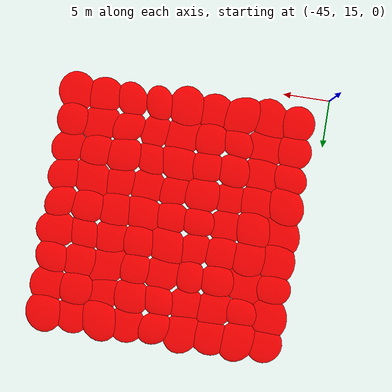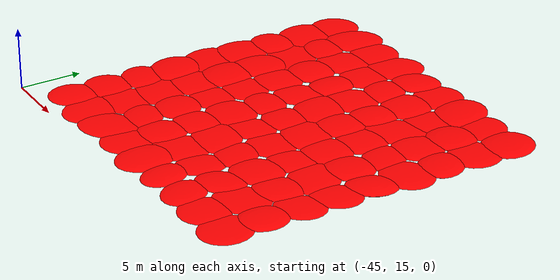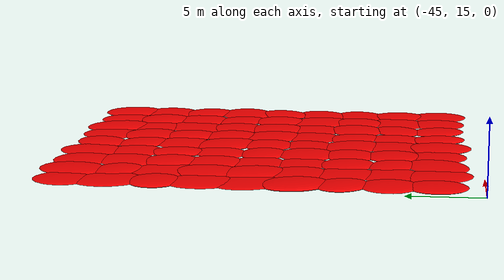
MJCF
<mujoco model="random_box_terrain">
    <compiler angle="degree" coordinate="local"/>
    <option timestep="0.01" gravity="0 0 -9.81" integrator="RK4"/>

    <asset>
        <texture type="2d" name="Plastic006_color"      file="../../textures/Plastic006_2K-PNG/Plastic006_2K-PNG_Color.png"/>
        <texture type="2d" name="Plastic006_roughness"  file="../../textures/Plastic006_2K-PNG/Plastic006_2K-PNG_Roughness.png"/>
        <texture type="2d" name="Plastic006_normal"     file="../../textures/Plastic006_2K-PNG/Plastic006_2K-PNG_NormalDX.png"/>

        <material name="pbr_plastic_black" metallic ="0.05" roughness="1.0" rgba="1 0 0 1.0">
        <layer role="rgb"        texture="Plastic006_color"/>
        <layer role="normal"     texture="Plastic006_normal"/>
        <layer role="roughness"  texture="Plastic006_roughness"/>
        </material>

        <texture type="2d" name="Plastic013A_color"      file="../../textures/Plastic013A_2K-PNG/Plastic013A_2K-PNG_Color.png"/>
        <texture type="2d" name="Plastic013A_roughness"  file="../../textures/Plastic013A_2K-PNG/Plastic013A_2K-PNG_Roughness.png"/>
        <texture type="2d" name="Plastic013A_normal"     file="../../textures/Plastic013A_2K-PNG/Plastic013A_2K-PNG_NormalDX.png"/>

        <material name="pbr_plastic_white" metallic ="0.05" roughness="1.0" rgba="1 0 0 1.0">
        <layer role="rgb"        texture="Plastic013A_color"/>
        <layer role="normal"     texture="Plastic013A_normal"/>
        <layer role="roughness"  texture="Plastic013A_roughness"/>
        </material>

        <texture type="2d" name="Plastic010_color"      file="../../textures/Plastic010_2K-PNG/Plastic010_2K-PNG_Color.png"/>
        <texture type="2d" name="Plastic010_roughness"  file="../../textures/Plastic010_2K-PNG/Plastic010_2K-PNG_Roughness.png"/>
        <texture type="2d" name="Plastic010_normal"     file="../../textures/Plastic010_2K-PNG/Plastic010_2K-PNG_NormalDX.png"/>

        <material name="pbr_plastic_gray" metallic ="0.05" roughness="1.0" rgba="1 0 0 1.0">
        <layer role="rgb"        texture="Plastic010_color"/>
        <layer role="normal"     texture="Plastic010_normal"/>
        <layer role="roughness"  texture="Plastic010_roughness"/>
        </material>
    </asset>
    <worldbody>
        <body name="offset" pos="-30.0 30.0 0.0">
            <body name="terrain" pos="0.0 0.0 0.0">
                <geom type="ellipsoid" pos="-12.0 -12.0 -0.1" size="2.0 1.894 0.153" euler="0 0 84.9" material="pbr_plastic_gray"/>
                <geom type="ellipsoid" pos="-9.0 -12.0 -0.1" size="2.0 2.395 0.115" euler="0 0 21.4" material="pbr_plastic_white"/>
                <geom type="ellipsoid" pos="-6.0 -12.0 -0.1" size="2.0 2.484 0.146" euler="0 0 118.3" material="pbr_plastic_gray"/>
                <geom type="ellipsoid" pos="-3.0 -12.0 -0.1" size="2.0 2.017 0.119" euler="0 0 135.9" material="pbr_plastic_white"/>
                <geom type="ellipsoid" pos="0.0 -12.0 -0.1" size="2.0 2.397 0.171" euler="0 0 189.4" material="pbr_plastic_gray"/>
                <geom type="ellipsoid" pos="3.0 -12.0 -0.1" size="2.0 1.512 0.172" euler="0 0 288.3" material="pbr_plastic_white"/>
                <geom type="ellipsoid" pos="6.0 -12.0 -0.1" size="2.0 1.627 0.151" euler="0 0 301.4" material="pbr_plastic_gray"/>
                <geom type="ellipsoid" pos="9.0 -12.0 -0.1" size="2.0 2.006 0.113" euler="0 0 332.9" material="pbr_plastic_white"/>
                <geom type="ellipsoid" pos="12.0 -12.0 -0.1" size="2.0 2.176 0.104" euler="0 0 197.4" material="pbr_plastic_gray"/>

                <geom type="ellipsoid" pos="-12.0 -9.0 -0.1" size="2.0 1.928 0.145" euler="0 0 171.7" material="pbr_plastic_white"/>
                <geom type="ellipsoid" pos="-9.0 -9.0 -0.1" size="2.0 2.239 0.104" euler="0 0 70.4" material="pbr_plastic_gray"/>
                <geom type="ellipsoid" pos="-6.0 -9.0 -0.1" size="2.0 1.529 0.154" euler="0 0 335.2" material="pbr_plastic_white"/>
                <geom type="ellipsoid" pos="-3.0 -9.0 -0.1" size="2.0 1.896 0.173" euler="0 0 270.9" material="pbr_plastic_gray"/>
                <geom type="ellipsoid" pos="0.0 -9.0 -0.1" size="2.0 2.387 0.119" euler="0 0 339.4" material="pbr_plastic_white"/>
                <geom type="ellipsoid" pos="3.0 -9.0 -0.1" size="2.0 1.591 0.119" euler="0 0 255.8" material="pbr_plastic_gray"/>
                <geom type="ellipsoid" pos="6.0 -9.0 -0.1" size="2.0 1.612 0.169" euler="0 0 39.7" material="pbr_plastic_white"/>
                <geom type="ellipsoid" pos="9.0 -9.0 -0.1" size="2.0 2.247 0.11" euler="0 0 129.0" material="pbr_plastic_gray"/>
                <geom type="ellipsoid" pos="12.0 -9.0 -0.1" size="2.0 1.758 0.167" euler="0 0 270.6" material="pbr_plastic_white"/>

                <geom type="ellipsoid" pos="-12.0 -6.0 -0.1" size="2.0 1.681 0.163" euler="0 0 155.9" material="pbr_plastic_white"/>
                <geom type="ellipsoid" pos="-9.0 -6.0 -0.1" size="2.0 2.294 0.116" euler="0 0 202.7" material="pbr_plastic_gray"/>
                <geom type="ellipsoid" pos="-6.0 -6.0 -0.1" size="2.0 1.831 0.175" euler="0 0 147.6" material="pbr_plastic_white"/>
                <geom type="ellipsoid" pos="-3.0 -6.0 -0.1" size="2.0 1.808 0.173" euler="0 0 190.5" material="pbr_plastic_gray"/>
                <geom type="ellipsoid" pos="0.0 -6.0 -0.1" size="2.0 2.384 0.153" euler="0 0 57.4" material="pbr_plastic_white"/>
                <geom type="ellipsoid" pos="3.0 -6.0 -0.1" size="2.0 1.647 0.138" euler="0 0 122.6" material="pbr_plastic_gray"/>
                <geom type="ellipsoid" pos="6.0 -6.0 -0.1" size="2.0 2.136 0.184" euler="0 0 123.9" material="pbr_plastic_white"/>
                <geom type="ellipsoid" pos="9.0 -6.0 -0.1" size="2.0 1.841 0.167" euler="0 0 53.2" material="pbr_plastic_gray"/>
                <geom type="ellipsoid" pos="12.0 -6.0 -0.1" size="2.0 1.751 0.112" euler="0 0 220.3" material="pbr_plastic_white"/>

                <geom type="ellipsoid" pos="-12.0 -3.0 -0.1" size="2.0 2.356 0.197" euler="0 0 28.2" material="pbr_plastic_white"/>
                <geom type="ellipsoid" pos="-9.0 -3.0 -0.1" size="2.0 2.193 0.142" euler="0 0 251.2" material="pbr_plastic_gray"/>
                <geom type="ellipsoid" pos="-6.0 -3.0 -0.1" size="2.0 1.721 0.108" euler="0 0 177.7" material="pbr_plastic_white"/>
                <geom type="ellipsoid" pos="-3.0 -3.0 -0.1" size="2.0 2.193 0.164" euler="0 0 84.8" material="pbr_plastic_gray"/>
                <geom type="ellipsoid" pos="0.0 -3.0 -0.1" size="2.0 1.689 0.119" euler="0 0 39.4" material="pbr_plastic_white"/>
                <geom type="ellipsoid" pos="3.0 -3.0 -0.1" size="2.0 1.96 0.109" euler="0 0 228.0" material="pbr_plastic_gray"/>
                <geom type="ellipsoid" pos="6.0 -3.0 -0.1" size="2.0 1.742 0.127" euler="0 0 239.7" material="pbr_plastic_white"/>
                <geom type="ellipsoid" pos="9.0 -3.0 -0.1" size="2.0 2.437 0.132" euler="0 0 37.9" material="pbr_plastic_gray"/>
                <geom type="ellipsoid" pos="12.0 -3.0 -0.1" size="2.0 1.733 0.126" euler="0 0 231.2" material="pbr_plastic_white"/>

                <geom type="ellipsoid" pos="-12.0 0.0 -0.1" size="2.0 2.495 0.107" euler="0 0 24.7"  material="pbr_plastic_white"/>
                <geom type="ellipsoid" pos="-9.0 0.0 -0.1" size="2.0 2.394 0.198" euler="0 0 19.4"  material="pbr_plastic_gray"/>
                <geom type="ellipsoid" pos="-6.0 0.0 -0.1" size="2.0 1.846 0.109" euler="0 0 353.3"  material="pbr_plastic_white"/>
                <geom type="ellipsoid" pos="-3.0 0.0 -0.1" size="2.0 1.604 0.181" euler="0 0 353.1"  material="pbr_plastic_gray"/>
                <geom type="ellipsoid" pos="0.0 0.0 -0.1" size="2.0 1.8 0.171"  euler="0 0 4.3" material="pbr_plastic_white"/>
                <geom type="ellipsoid" pos="3.0 0.0 -0.1" size="2.0 2.335 0.168"  euler="0 0 240.2" material="pbr_plastic_gray"/>
                <geom type="ellipsoid" pos="6.0 0.0 -0.1" size="2.0 2.121 0.173"  euler="0 0 17.4" material="pbr_plastic_white"/>
                <geom type="ellipsoid" pos="9.0 0.0 -0.1" size="2.0 1.913 0.194"  euler="0 0 227.4" material="pbr_plastic_gray"/>
                <geom type="ellipsoid" pos="12.0 0.0 -0.1" size="2.0 1.589 0.189"  euler="0 0 56.3" material="pbr_plastic_white"/>

                <geom type="ellipsoid" pos="-12.0 3.0 -0.1" size="2.0 2.46 0.133" euler="0 0 184.0"   material="pbr_plastic_white"/>
                <geom type="ellipsoid" pos="-9.0 3.0 -0.1" size="2.0 2.34 0.184" euler="0 0 168.2"  material="pbr_plastic_gray"/>
                <geom type="ellipsoid" pos="-6.0 3.0 -0.1" size="2.0 1.985 0.16" euler="0 0 34.4"  material="pbr_plastic_white"/>
                <geom type="ellipsoid" pos="-3.0 3.0 -0.1" size="2.0 1.759 0.149" euler="0 0 230.8"  material="pbr_plastic_gray"/>
                <geom type="ellipsoid" pos="0.0 3.0 -0.1" size="2.0 2.447 0.183"  euler="0 0 45.8" material="pbr_plastic_white"/>
                <geom type="ellipsoid" pos="3.0 3.0 -0.1" size="2.0 1.979 0.199"  euler="0 0 287.3" material="pbr_plastic_gray"/>
                <geom type="ellipsoid" pos="6.0 3.0 -0.1" size="2.0 2.065 0.147"  euler="0 0 12.3" material="pbr_plastic_white"/>
                <geom type="ellipsoid" pos="9.0 3.0 -0.1" size="2.0 1.659 0.148"  euler="0 0 317.5" material="pbr_plastic_gray"/>
                <geom type="ellipsoid" pos="12.0 3.0 -0.1" size="2.0 2.248 0.152"  euler="0 0 97.9" material="pbr_plastic_white"/>

                <geom type="ellipsoid" pos="-12.0 6.0 -0.1" size="2.0 1.783 0.175" euler="0 0 180.4"  material="pbr_plastic_white"/>
                <geom type="ellipsoid" pos="-9.0 6.0 -0.1" size="2.0 2.461 0.101" euler="0 0 245.5"  material="pbr_plastic_gray"/>
                <geom type="ellipsoid" pos="-6.0 6.0 -0.1" size="2.0 1.916 0.2" euler="0 0 145.9"  material="pbr_plastic_white"/>
                <geom type="ellipsoid" pos="-3.0 6.0 -0.1" size="2.0 1.581 0.197" euler="0 0 274.8"  material="pbr_plastic_gray"/>
                <geom type="ellipsoid" pos="0.0 6.0 -0.1" size="2.0 2.122 0.145"  euler="0 0 325.7" material="pbr_plastic_white"/>
                <geom type="ellipsoid" pos="3.0 6.0 -0.1" size="2.0 1.76 0.197"  euler="0 0 86.5" material="pbr_plastic_gray"/>
                <geom type="ellipsoid" pos="6.0 6.0 -0.1" size="2.0 2.469 0.119"  euler="0 0 325.1" material="pbr_plastic_white"/>
                <geom type="ellipsoid" pos="9.0 6.0 -0.1" size="2.0 2.042 0.16"  euler="0 0 309.8" material="pbr_plastic_gray"/>
                <geom type="ellipsoid" pos="12.0 6.0 -0.1" size="2.0 1.746 0.188"  euler="0 0 135.4" material="pbr_plastic_white"/>

                <geom type="ellipsoid" pos="-12.0 9.0 -0.1" size="2.0 2.436 0.118" euler="0 0 197.9"  material="pbr_plastic_white"/>
                <geom type="ellipsoid" pos="-9.0 9.0 -0.1" size="2.0 1.577 0.175" euler="0 0 344.8"  material="pbr_plastic_gray"/>
                <geom type="ellipsoid" pos="-6.0 9.0 -0.1" size="2.0 2.207 0.154" euler="0 0 143.6"  material="pbr_plastic_white"/>
                <geom type="ellipsoid" pos="-3.0 9.0 -0.1" size="2.0 1.94 0.144" euler="0 0 345.0"  material="pbr_plastic_gray"/>
                <geom type="ellipsoid" pos="0.0 9.0 -0.1" size="2.0 1.654 0.179"  euler="0 0 146.1" material="pbr_plastic_white"/>
                <geom type="ellipsoid" pos="3.0 9.0 -0.1" size="2.0 2.123 0.183"  euler="0 0 49.1" material="pbr_plastic_gray"/>
                <geom type="ellipsoid" pos="6.0 9.0 -0.1" size="2.0 1.82 0.114"  euler="0 0 80.7" material="pbr_plastic_white"/>
                <geom type="ellipsoid" pos="9.0 9.0 -0.1" size="2.0 1.974 0.197"  euler="0 0 359.5" material="pbr_plastic_gray"/>
                <geom type="ellipsoid" pos="12.0 9.0 -0.1" size="2.0 2.12 0.136"  euler="0 0 178.7" material="pbr_plastic_white"/>

                <geom type="ellipsoid" pos="-12.0 12.0 -0.1" size="2.0 1.901 0.113" euler="0 0 58.3"  material="pbr_plastic_white"/>
                <geom type="ellipsoid" pos="-9.0 12.0 -0.1" size="2.0 2.382 0.18" euler="0 0 156.5"  material="pbr_plastic_gray"/>
                <geom type="ellipsoid" pos="-6.0 12.0 -0.1" size="2.0 2.16 0.153" euler="0 0 64.2"  material="pbr_plastic_white"/>
                <geom type="ellipsoid" pos="-3.0 12.0 -0.1" size="2.0 2.376 0.154" euler="0 0 161.1"  material="pbr_plastic_gray"/>
                <geom type="ellipsoid" pos="0.0 12.0 -0.1" size="2.0 1.687 0.197"  euler="0 0 38.8" material="pbr_plastic_white"/>
                <geom type="ellipsoid" pos="3.0 12.0 -0.1" size="2.0 2.032 0.119"  euler="0 0 189.7" material="pbr_plastic_gray"/>
                <geom type="ellipsoid" pos="6.0 12.0 -0.1" size="2.0 2.416 0.191"  euler="0 0 210.5" material="pbr_plastic_white"/>
                <geom type="ellipsoid" pos="9.0 12.0 -0.1" size="2.0 1.797 0.124"  euler="0 0 317.8" material="pbr_plastic_gray"/>
                <geom type="ellipsoid" pos="12.0 12.0 -0.1" size="2.0 2.216 0.184"  euler="0 0 199.4" material="pbr_plastic_white"/>
            </body>
        </body>
    </worldbody>

    <actuator>
        <!-- 在这里你可以定义一些控制器 -->
    </actuator>

</mujoco>
